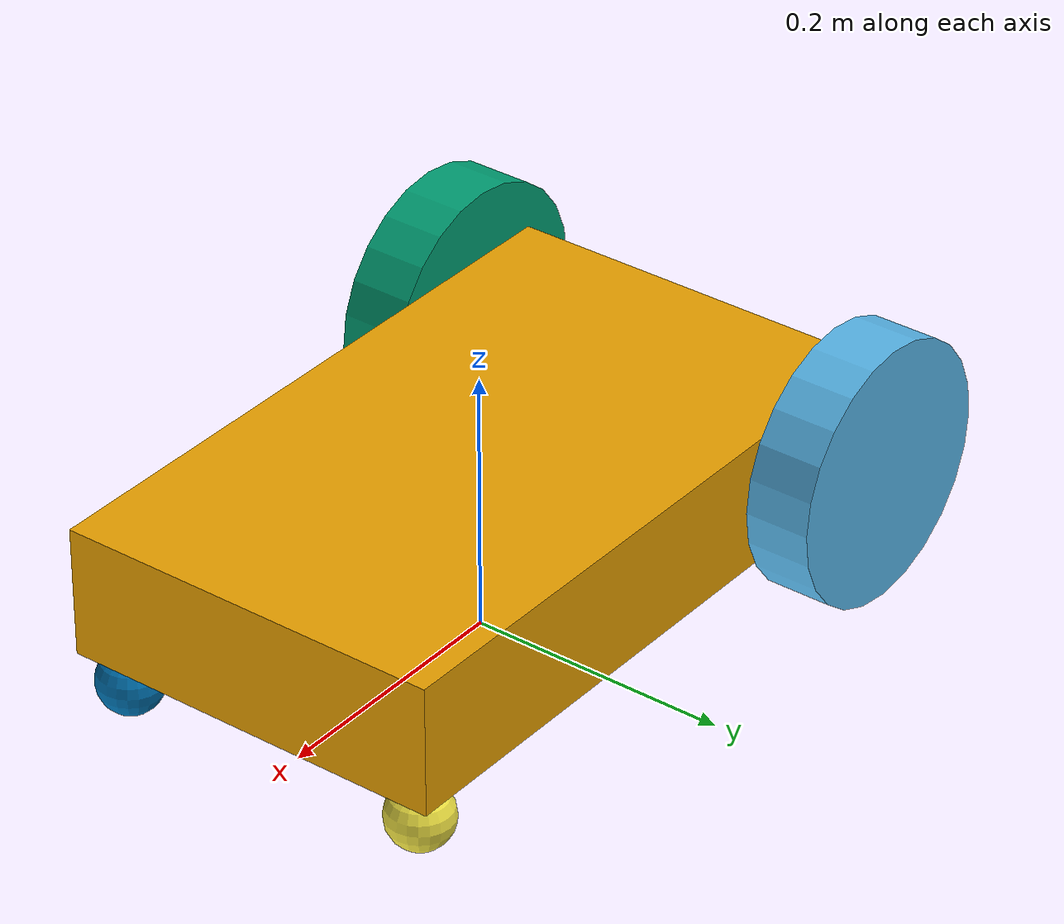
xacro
<?xml version='1.0'?>
<robot name="dd_bot" xmlns:xacro="http://ros.org/wiki/xacro">

  <xacro:property name="chassis_x_dim" value="0.5" />
  <xacro:property name="chassis_y_dim" value="0.3" />
  <xacro:property name="chassis_z_dim" value="0.1" />
  <xacro:property name="chassis_mass" value="5.0" />

  <xacro:property name="wheel_radius" value="0.1" />
  <xacro:property name="wheel_height" value="0.05" />
  <xacro:property name="wheel_mass" value="1.0" />

  <xacro:property name="caster_radius" value="${(wheel_radius - chassis_z_dim/2)/2}" />
  <xacro:property name="caster_mass" value="1.0" />

  <xacro:macro name="wheel_inertial" params="m r h">
    <inertial>
      <mass value="${m}" />
      <inertia ixx="${(1/12)*m*h*h + (1/4)*m*r*r}" ixy ="0.0" ixz ="0.0" iyy="${(1/2)*m*r*r}" iyz="0.0" izz="${(1/12)*m*h*h + (1/4)*m*r*r}" />
    </inertial>
  </xacro:macro>

  <xacro:macro name="wheel_visual" params="r h">
    <visual>
      <geometry>
        <cylinder length="${h}" radius="${r}"/>
      </geometry>
      <origin rpy="0 1.5707 1.5707" xyz="0 0 0"/>
    </visual>
  </xacro:macro>

  <xacro:macro name="wheel_collision" params="r h">
    <collision>
      <geometry>
        <cylinder length="${h}" radius="${r}"/>
      </geometry>
      <origin rpy="0 1.5707 1.5707" xyz="0 0 0"/>
    </collision>
  </xacro:macro>

  <xacro:macro name="caster_inertial" params="m r">
    <inertial>
      <mass value="${m}" />
      <inertia ixx="${(2/5)*m*r*r}" ixy ="0.0" ixz ="0.0" iyy="${(2/5)*m*r*r}" iyz="0.0" izz="${(2/5)*m*r*r}" />
    </inertial>
  </xacro:macro>

  <xacro:macro name="caster_visual" params="r">
    <visual>
      <geometry>
        <sphere radius="${r}"/>
      </geometry>
      <origin xyz="0 0 0"/>
    </visual>
  </xacro:macro>

  <xacro:macro name="caster_collision" params="r">
    <collision>
      <geometry>
        <sphere radius="${r}"/>
      </geometry>
      <origin xyz="0 0 0"/>
    </collision>
  </xacro:macro>

  <xacro:macro name="chassis_inertial" params="m x y z">
    <inertial>
      <mass value="${m}" />
      <inertia ixx="${(1/12)*m*(y*y + z*z)}" ixy ="0.0" ixz ="0.0" iyy="${(1/12)*m*(x*x + z*z)}" iyz="0.0" izz="${(1/12)*m*(x*x + y*y)}" />
    </inertial>
  </xacro:macro>

  <xacro:macro name="chassis_visual" params="x y z z_disp">
    <visual>
      <geometry>
        <box size="${x} ${y} ${z}"/>
      </geometry>
      <origin xyz="0 0 ${z_disp}"/>
    </visual>
  </xacro:macro>

  <xacro:macro name="chassis_collision" params="x y z z_disp">
    <collision>
      <geometry>
        <box size="${x} ${y} ${z}"/>
      </geometry>
      <origin xyz="0 0 ${z_disp}"/>
    </collision>
  </xacro:macro>

  <link name="base_link">
    <xacro:chassis_visual x="${chassis_x_dim}" y="${chassis_y_dim}" z="${chassis_z_dim}" z_disp="${wheel_radius}" />
    <xacro:chassis_inertial m="${chassis_mass}" x="${chassis_x_dim}" y="${chassis_y_dim}" z="${chassis_z_dim}"/>
    <xacro:chassis_collision x="${chassis_x_dim}" y="${chassis_y_dim}" z="${chassis_z_dim}" z_disp="${wheel_radius}" />
  </link>

  <link name="left_wheel">
    <xacro:wheel_visual r="${wheel_radius}" h="${wheel_height}" />
    <xacro:wheel_inertial m="${wheel_mass}" r="${wheel_radius}" h="${wheel_height}" />
    <xacro:wheel_collision r="${wheel_radius}" h="${wheel_height}" />
  </link>

  <link name="right_wheel">
    <xacro:wheel_visual r="${wheel_radius}" h="${wheel_height}" />
    <xacro:wheel_inertial m="${wheel_mass}" r="${wheel_radius}" h="${wheel_height}" />
    <xacro:wheel_collision r="${wheel_radius}" h="${wheel_height}" />
  </link>

  <link name="left_caster_wheel">
    <xacro:caster_visual r="${caster_radius}" />
    <xacro:caster_inertial m="${caster_mass}" r="${caster_radius}" />
    <xacro:caster_collision r="${caster_radius}" />
  </link>

  <link name="right_caster_wheel">
    <xacro:caster_visual r="${caster_radius}" />
    <xacro:caster_inertial m="${caster_mass}" r="${caster_radius}" />
    <xacro:caster_collision r="${caster_radius}" />
  </link>

  <joint name="left_caster_hinge" type="fixed">
    <child link="left_caster_wheel"/>
    <parent link="base_link"/>
    <origin rpy="0 0 0" xyz="${chassis_x_dim/2 - caster_radius} ${chassis_y_dim/2 - caster_radius} ${caster_radius}"/>
  </joint>

  <joint name="right_caster_hinge" type="fixed">
    <child link="right_caster_wheel"/>
    <parent link="base_link"/>
    <origin rpy="0 0 0" xyz="${chassis_x_dim/2 - caster_radius} ${-(chassis_y_dim/2 - caster_radius)} ${caster_radius}"/>
  </joint>

  <joint name="left_wheel_hinge" type="continuous">
    <child link="left_wheel"/>
    <parent link="base_link"/>
    <axis xyz="0 1 0"/>
    <origin rpy="0 0 0" xyz="${-chassis_x_dim/2 + (0.5*wheel_radius)} ${(chassis_y_dim/2 + (1.1*wheel_height)/2)} ${wheel_radius}"/>
  </joint>

  <joint name="right_wheel_hinge" type="continuous">
    <child link="right_wheel"/>
    <parent link="base_link"/>
    <axis xyz="0 1 0"/>
    <origin rpy="0 0 0" xyz="${-chassis_x_dim/2 + (0.5*wheel_radius)} ${-(chassis_y_dim/2 + (1.1*wheel_height)/2)} ${wheel_radius}"/>
  </joint>

  <gazebo reference="left_wheel">
    <mu1>100</mu1>
    <mu2>100</mu2>
    <minDepth>0.005</minDepth>
  </gazebo>
  <gazebo reference="right_wheel">
    <mu1>100</mu1>
    <mu2>100</mu2>
    <minDepth>0.005</minDepth>
  </gazebo>
  <gazebo reference="left_caster_wheel">
    <mu1>0.0</mu1>
    <mu2>0.0</mu2>
    <minDepth>0.00</minDepth>
  </gazebo>
  <gazebo reference="right_caster_wheel">
    <mu1>0.0</mu1>
    <mu2>0.0</mu2>
    <minDepth>0.00</minDepth>
  </gazebo>
  <gazebo>
    <plugin name="p3d_base_controller" filename="libgazebo_ros_p3d.so">
      <alwaysOn>true</alwaysOn>
      <updateRate>50.0</updateRate>
      <bodyName>base_link</bodyName>
      <topicName>ground_truth/state</topicName>
      <gaussianNoise>0.0</gaussianNoise>
      <frameName>world</frameName>
      <xyzOffsets>0 0 0</xyzOffsets>
      <rpyOffsets>0 0 0</rpyOffsets>
    </plugin>

    <plugin name="gazebo_ros_control" filename="libgazebo_ros_control.so">
      <robotNamespace>/dd_bot</robotNamespace>
    </plugin>
  </gazebo>

  <transmission name="left_wheel_tran">
    <type>transmission_interface/SimpleTransmission</type>
    <joint name="left_wheel_hinge">
      <hardwareInterface>EffortJointInterface</hardwareInterface>
    </joint>
    <actuator name="left_motor">
      <hardwareInterface>EffortJointInterface</hardwareInterface>
      <mechanicalReduction>1</mechanicalReduction>
    </actuator>
  </transmission>

  <transmission name="right_wheel_tran">
    <type>transmission_interface/SimpleTransmission</type>
    <joint name="right_wheel_hinge">
      <hardwareInterface>EffortJointInterface</hardwareInterface>
    </joint>
    <actuator name="right_motor">
      <hardwareInterface>EffortJointInterface</hardwareInterface>
      <mechanicalReduction>1</mechanicalReduction>
    </actuator>
  </transmission>

</robot>
